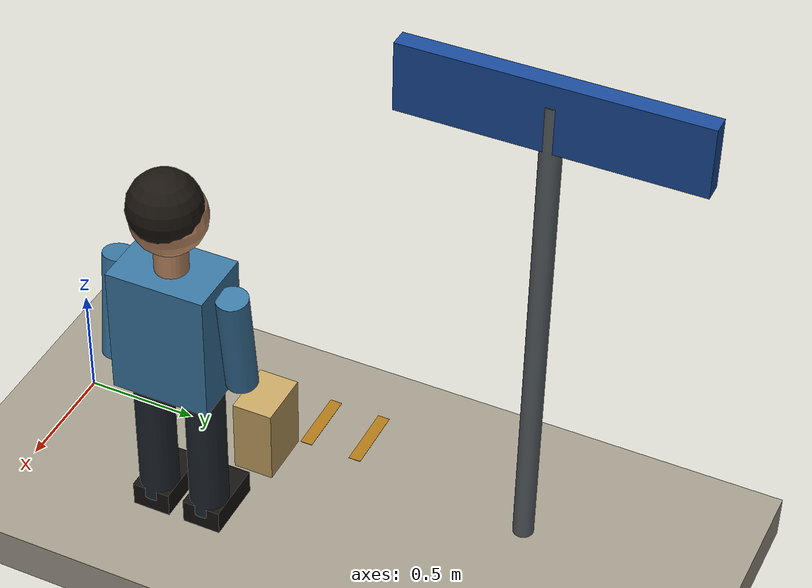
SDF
<sdf version="1.10">
 <world name="swan_town">
  <model name="ground_plane">
   <pose>-14 30 -0.025 0 0 0</pose>
   <static>true</static>
   <link name="link">
    <collision name="collision">
     <geometry><plane><normal>0 0 1</normal><size>100 100</size></plane></geometry>
    </collision>
    <visual name="visual">
     <geometry><plane><normal>0 0 1</normal><size>100 100</size></plane></geometry>
     <material><ambient>0.3 0.5 0.2 1</ambient><diffuse>0.3 0.5 0.2 1</diffuse></material>
    </visual>
   </link>
  </model>
  <model name="ground">
   <static>true</static>
   <pose>15 0 -0.1 0 0 0</pose>
   <link name="body">
    <collision name="box_collision"><geometry><box><size>46 24 0.2</size></box></geometry></collision>
    <visual name="box_visual">
     <geometry><box><size>46 24 0.2</size></box></geometry>
     <material><ambient>0.64 0.61 0.55 1</ambient><diffuse>0.64 0.61 0.55 1</diffuse></material>
    </visual>
   </link>
  </model>
  <model name="tactile_mark_1_9">
   <static>true</static>
   <pose>-0.2 0.815 0.022 0 0 0</pose>
   <link name="body">
    <visual name="box_visual">
     <geometry><box><size>0.3 0.055 0.002</size></box></geometry>
     <material><ambient>0.69 0.47 0.1 1</ambient><diffuse>0.69 0.47 0.1 1</diffuse></material>
    </visual>
   </link>
  </model>
  <model name="tactile_mark_1_10">
   <static>true</static>
   <pose>-0.2 1.05 0.022 0 0 0</pose>
   <link name="body">
    <visual name="box_visual">
     <geometry><box><size>0.3 0.055 0.002</size></box></geometry>
     <material><ambient>0.69 0.47 0.1 1</ambient><diffuse>0.69 0.47 0.1 1</diffuse></material>
    </visual>
   </link>
  </model>
  <model name="tactile_mark_1_11">
   <static>true</static>
   <pose>-0.2 1.285 0.022 0 0 0</pose>
   <link name="body">
    <visual name="box_visual">
     <geometry><box><size>0.3 0.055 0.002</size></box></geometry>
     <material><ambient>0.69 0.47 0.1 1</ambient><diffuse>0.69 0.47 0.1 1</diffuse></material>
    </visual>
   </link>
  </model>
  <model name="crosswalk_sign_pole">
   <static>true</static>
   <pose>0 2.1 0 0 0 0</pose>
   <link name="body">
    <collision name="post_collision">
     <pose>0 0 1.1 0 0 0</pose>
     <geometry><cylinder><radius>0.045</radius><length>2.2</length></cylinder></geometry>
    </collision>
    <visual name="post_visual">
     <pose>0 0 1.1 0 0 0</pose>
     <geometry><cylinder><radius>0.045</radius><length>2.2</length></cylinder></geometry>
     <material><ambient>0.35 0.38 0.4 1</ambient><diffuse>0.35 0.38 0.4 1</diffuse></material>
    </visual>
   </link>
  </model>
  <model name="crosswalk_sign_back">
   <static>true</static>
   <pose>0 2.1 2.15 0 0 0</pose>
   <link name="body">
    <collision name="box_collision"><geometry><box><size>0.08 1.25 0.3</size></box></geometry></collision>
    <visual name="box_visual">
     <geometry><box><size>0.08 1.25 0.3</size></box></geometry>
     <material><ambient>0.1 0.29 0.6 1</ambient><diffuse>0.1 0.29 0.6 1</diffuse></material>
    </visual>
   </link>
  </model>
  <model name="sign_crosswalk">
   <static>true</static>
   <pose>-0.048 2.1 2.15 0 0 -1.5708</pose>
   <link name="body">
    <visual name="top_visual">
     <pose>0 -0.003 0.10687 0 0 0</pose>
     <geometry><box><size>1.1712 0.003 0.0036</size></box></geometry>
     <material><ambient>1 0.961 0.875 1</ambient><diffuse>1 0.961 0.875 1</diffuse></material>
    </visual>
    <visual name="bottom_visual">
     <pose>0 -0.003 -0.10687 0 0 0</pose>
     <geometry><box><size>1.1712 0.003 0.0036</size></box></geometry>
     <material><ambient>1 0.961 0.875 1</ambient><diffuse>1 0.961 0.875 1</diffuse></material>
    </visual>
    <visual name="left_visual">
     <pose>-0.5856 -0.003 0 0 0 0</pose>
     <geometry><box><size>0.0036 0.003 0.21375</size></box></geometry>
     <material><ambient>1 0.961 0.875 1</ambient><diffuse>1 0.961 0.875 1</diffuse></material>
    </visual>
    <visual name="right_visual">
     <pose>0.5856 -0.003 0 0 0 0</pose>
     <geometry><box><size>0.0036 0.003 0.21375</size></box></geometry>
     <material><ambient>1 0.961 0.875 1</ambient><diffuse>1 0.961 0.875 1</diffuse></material>
    </visual>
    <visual name="ink_0_visual">
     <pose>-0.14375 -0.003 0.053125 0 0 0</pose>
     <geometry><box><size>0.025 0.003 0.00625</size></box></geometry>
     <material><ambient>1 0.961 0.875 1</ambient><diffuse>1 0.961 0.875 1</diffuse></material>
    </visual>
    <visual name="ink_1_visual">
     <pose>-0.14687 -0.003 0.046875 0 0 0</pose>
     <geometry><box><size>0.01875 0.003 0.00625</size></box></geometry>
     <material><ambient>1 0.961 0.875 1</ambient><diffuse>1 0.961 0.875 1</diffuse></material>
    </visual>
    <visual name="ink_2_visual">
     <pose>0.13125 -0.003 0.046875 0 0 0</pose>
     <geometry><box><size>0.0625 0.003 0.00625</size></box></geometry>
     <material><ambient>1 0.961 0.875 1</ambient><diffuse>1 0.961 0.875 1</diffuse></material>
    </visual>
    <visual name="ink_3_visual">
     <pose>-0.14375 -0.003 0.040625 0 0 0</pose>
     <geometry><box><size>0.05 0.003 0.00625</size></box></geometry>
     <material><ambient>1 0.961 0.875 1</ambient><diffuse>1 0.961 0.875 1</diffuse></material>
    </visual>
    <visual name="ink_4_visual">
     <pose>-0.0625 -0.003 0.04375 0 0 0</pose>
     <geometry><box><size>0.0375 0.003 0.0125</size></box></geometry>
     <material><ambient>1 0.961 0.875 1</ambient><diffuse>1 0.961 0.875 1</diffuse></material>
    </visual>
    <visual name="ink_5_visual">
     <pose>0.071875 -0.003 0.04375 0 0 0</pose>
     <geometry><box><size>0.00625 0.003 0.0125</size></box></geometry>
     <material><ambient>1 0.961 0.875 1</ambient><diffuse>1 0.961 0.875 1</diffuse></material>
    </visual>
    <visual name="ink_6_visual">
     <pose>0.12187 -0.003 0.040625 0 0 0</pose>
     <geometry><box><size>0.00625 0.003 0.00625</size></box></geometry>
     <material><ambient>1 0.961 0.875 1</ambient><diffuse>1 0.961 0.875 1</diffuse></material>
    </visual>
    <visual name="ink_7_visual">
     <pose>-0.14375 -0.003 0.034375 0 0 0</pose>
     <geometry><box><size>0.025 0.003 0.00625</size></box></geometry>
     <material><ambient>1 0.961 0.875 1</ambient><diffuse>1 0.961 0.875 1</diffuse></material>
    </visual>
    <visual name="ink_8_visual">
     <pose>-0.01875 -0.003 0.04375 0 0 0</pose>
     <geometry><box><size>0.0125 0.003 0.025</size></box></geometry>
     <material><ambient>1 0.961 0.875 1</ambient><diffuse>1 0.961 0.875 1</diffuse></material>
    </visual>
    <visual name="ink_9_visual">
     <pose>0.01875 -0.003 0.040625 0 0 0</pose>
     <geometry><box><size>0.0125 0.003 0.01875</size></box></geometry>
     <material><ambient>1 0.961 0.875 1</ambient><diffuse>1 0.961 0.875 1</diffuse></material>
    </visual>
    <visual name="ink_10_visual">
     <pose>0.034375 -0.003 0.034375 0 0 0</pose>
     <geometry><box><size>0.00625 0.003 0.00625</size></box></geometry>
     <material><ambient>1 0.961 0.875 1</ambient><diffuse>1 0.961 0.875 1</diffuse></material>
    </visual>
    <visual name="ink_11_visual">
     <pose>0.06875 -0.003 0.034375 0 0 0</pose>
     <geometry><box><size>0.0125 0.003 0.00625</size></box></geometry>
     <material><ambient>1 0.961 0.875 1</ambient><diffuse>1 0.961 0.875 1</diffuse></material>
    </visual>
    <visual name="ink_12_visual">
     <pose>-0.14375 -0.003 0.028125 0 0 0</pose>
     <geometry><box><size>0.0375 0.003 0.00625</size></box></geometry>
     <material><ambient>1 0.961 0.875 1</ambient><diffuse>1 0.961 0.875 1</diffuse></material>
    </visual>
    <visual name="ink_13_visual">
     <pose>-0.0125 -0.003 0.028125 0 0 0</pose>
     <geometry><box><size>0.025 0.003 0.00625</size></box></geometry>
     <material><ambient>1 0.961 0.875 1</ambient><diffuse>1 0.961 0.875 1</diffuse></material>
    </visual>
    <visual name="ink_14_visual">
     <pose>0.04375 -0.003 0.028125 0 0 0</pose>
     <geometry><box><size>0.0625 0.003 0.00625</size></box></geometry>
     <material><ambient>1 0.961 0.875 1</ambient><diffuse>1 0.961 0.875 1</diffuse></material>
    </visual>
    <visual name="ink_15_visual">
     <pose>-0.1625 -0.003 0.021875 0 0 0</pose>
     <geometry><box><size>0.0125 0.003 0.00625</size></box></geometry>
     <material><ambient>1 0.961 0.875 1</ambient><diffuse>1 0.961 0.875 1</diffuse></material>
    </visual>
    <visual name="ink_16_visual">
     <pose>-0.12812 -0.003 0.021875 0 0 0</pose>
     <geometry><box><size>0.00625 0.003 0.00625</size></box></geometry>
     <material><ambient>1 0.961 0.875 1</ambient><diffuse>1 0.961 0.875 1</diffuse></material>
    </visual>
    <visual name="ink_17_visual">
     <pose>-0.14375 -0.003 0.015625 0 0 0</pose>
     <geometry><box><size>0.0375 0.003 0.00625</size></box></geometry>
     <material><ambient>1 0.961 0.875 1</ambient><diffuse>1 0.961 0.875 1</diffuse></material>
    </visual>
    <visual name="ink_18_visual">
     <pose>-0.078125 -0.003 0.025 0 0 0</pose>
     <geometry><box><size>0.00625 0.003 0.025</size></box></geometry>
     <material><ambient>1 0.961 0.875 1</ambient><diffuse>1 0.961 0.875 1</diffuse></material>
    </visual>
    <visual name="ink_19_visual">
     <pose>0.01875 -0.003 0.01875 0 0 0</pose>
     <geometry><box><size>0.0125 0.003 0.0125</size></box></geometry>
     <material><ambient>1 0.961 0.875 1</ambient><diffuse>1 0.961 0.875 1</diffuse></material>
    </visual>
    <visual name="ink_20_visual">
     <pose>0.071875 -0.003 0.01875 0 0 0</pose>
     <geometry><box><size>0.00625 0.003 0.0125</size></box></geometry>
     <material><ambient>1 0.961 0.875 1</ambient><diffuse>1 0.961 0.875 1</diffuse></material>
    </visual>
    <visual name="ink_21_visual">
     <pose>0.10625 -0.003 0.028125 0 0 0</pose>
     <geometry><box><size>0.0125 0.003 0.03125</size></box></geometry>
     <material><ambient>1 0.961 0.875 1</ambient><diffuse>1 0.961 0.875 1</diffuse></material>
    </visual>
    <visual name="ink_22_visual">
     <pose>-0.14375 -0.003 0.009375 0 0 0</pose>
     <geometry><box><size>0.0125 0.003 0.00625</size></box></geometry>
     <material><ambient>1 0.961 0.875 1</ambient><diffuse>1 0.961 0.875 1</diffuse></material>
    </visual>
    <visual name="ink_23_visual">
     <pose>-0.05625 -0.003 0.009375 0 0 0</pose>
     <geometry><box><size>0.05 0.003 0.00625</size></box></geometry>
     <material><ambient>1 0.961 0.875 1</ambient><diffuse>1 0.961 0.875 1</diffuse></material>
    </visual>
    <visual name="ink_24_visual">
     <pose>0.13437 -0.003 0.009375 0 0 0</pose>
     <geometry><box><size>0.06875 0.003 0.00625</size></box></geometry>
     <material><ambient>1 0.961 0.875 1</ambient><diffuse>1 0.961 0.875 1</diffuse></material>
    </visual>
    <visual name="ink_25_visual">
     <pose>-0.14375 -0.003 0.003125 0 0 0</pose>
     <geometry><box><size>0.0625 0.003 0.00625</size></box></geometry>
     <material><ambient>1 0.961 0.875 1</ambient><diffuse>1 0.961 0.875 1</diffuse></material>
    </visual>
    <visual name="ink_26_visual">
     <pose>0.04375 -0.003 0.00625 0 0 0</pose>
     <geometry><box><size>0.0625 0.003 0.0125</size></box></geometry>
     <material><ambient>1 0.961 0.875 1</ambient><diffuse>1 0.961 0.875 1</diffuse></material>
    </visual>
    <visual name="ink_27_visual">
     <pose>0.13125 -0.003 0.003125 0 0 0</pose>
     <geometry><box><size>0.0125 0.003 0.00625</size></box></geometry>
     <material><ambient>1 0.961 0.875 1</ambient><diffuse>1 0.961 0.875 1</diffuse></material>
    </visual>
    <visual name="ink_28_visual">
     <pose>-0.1625 -0.003 -0.003125 0 0 0</pose>
     <geometry><box><size>0.025 0.003 0.00625</size></box></geometry>
     <material><ambient>1 0.961 0.875 1</ambient><diffuse>1 0.961 0.875 1</diffuse></material>
    </visual>
    <visual name="ink_29_visual">
     <pose>-0.13438 -0.003 -0.003125 0 0 0</pose>
     <geometry><box><size>0.01875 0.003 0.00625</size></box></geometry>
     <material><ambient>1 0.961 0.875 1</ambient><diffuse>1 0.961 0.875 1</diffuse></material>
    </visual>
    <visual name="ink_30_visual">
     <pose>-0.10312 -0.003 0.025 0 0 0</pose>
     <geometry><box><size>0.00625 0.003 0.0625</size></box></geometry>
     <material><ambient>1 0.961 0.875 1</ambient><diffuse>1 0.961 0.875 1</diffuse></material>
    </visual>
    <visual name="ink_31_visual">
     <pose>-0.01875 -0.003 0.009375 0 0 0</pose>
     <geometry><box><size>0.0125 0.003 0.03125</size></box></geometry>
     <material><ambient>1 0.961 0.875 1</ambient><diffuse>1 0.961 0.875 1</diffuse></material>
    </visual>
    <visual name="ink_32_visual">
     <pose>-0.12812 -0.003 -0.009375 0 0 0</pose>
     <geometry><box><size>0.04375 0.003 0.00625</size></box></geometry>
     <material><ambient>1 0.961 0.875 1</ambient><diffuse>1 0.961 0.875 1</diffuse></material>
    </visual>
    <visual name="ink_33_visual">
     <pose>-0.021875 -0.003 -0.009375 0 0 0</pose>
     <geometry><box><size>0.00625 0.003 0.00625</size></box></geometry>
     <material><ambient>1 0.961 0.875 1</ambient><diffuse>1 0.961 0.875 1</diffuse></material>
    </visual>
    <visual name="ink_34_visual">
     <pose>0.04375 -0.003 -0.00625 0 0 0</pose>
     <geometry><box><size>0.0125 0.003 0.0125</size></box></geometry>
     <material><ambient>1 0.961 0.875 1</ambient><diffuse>1 0.961 0.875 1</diffuse></material>
    </visual>
    <visual name="ink_35_visual">
     <pose>0.13437 -0.003 -0.00625 0 0 0</pose>
     <geometry><box><size>0.00625 0.003 0.0125</size></box></geometry>
     <material><ambient>1 0.961 0.875 1</ambient><diffuse>1 0.961 0.875 1</diffuse></material>
    </visual>
    <visual name="ink_36_visual">
     <pose>-0.15313 -0.003 -0.015625 0 0 0</pose>
     <geometry><box><size>0.01875 0.003 0.00625</size></box></geometry>
     <material><ambient>1 0.961 0.875 1</ambient><diffuse>1 0.961 0.875 1</diffuse></material>
    </visual>
    <visual name="ink_37_visual">
     <pose>0.04375 -0.003 -0.015625 0 0 0</pose>
     <geometry><box><size>0.075 0.003 0.00625</size></box></geometry>
     <material><ambient>1 0.961 0.875 1</ambient><diffuse>1 0.961 0.875 1</diffuse></material>
    </visual>
    <visual name="ink_38_visual">
     <pose>-0.15625 -0.003 -0.021875 0 0 0</pose>
     <geometry><box><size>0.0125 0.003 0.00625</size></box></geometry>
     <material><ambient>1 0.961 0.875 1</ambient><diffuse>1 0.961 0.875 1</diffuse></material>
    </visual>
    <visual name="ink_39_visual">
     <pose>-0.10625 -0.003 -0.01875 0 0 0</pose>
     <geometry><box><size>0.0125 0.003 0.0125</size></box></geometry>
     <material><ambient>1 0.961 0.875 1</ambient><diffuse>1 0.961 0.875 1</diffuse></material>
    </visual>
    <visual name="ink_40_visual">
     <pose>-0.06875 -0.003 -0.015625 0 0 0</pose>
     <geometry><box><size>0.0125 0.003 0.01875</size></box></geometry>
     <material><ambient>1 0.961 0.875 1</ambient><diffuse>1 0.961 0.875 1</diffuse></material>
    </visual>
    <visual name="ink_41_visual">
     <pose>0.046875 -0.003 -0.021875 0 0 0</pose>
     <geometry><box><size>0.08125 0.003 0.00625</size></box></geometry>
     <material><ambient>1 0.961 0.875 1</ambient><diffuse>1 0.961 0.875 1</diffuse></material>
    </visual>
    <visual name="ink_42_visual">
     <pose>0.13437 -0.003 -0.01875 0 0 0</pose>
     <geometry><box><size>0.08125 0.003 0.0125</size></box></geometry>
     <material><ambient>1 0.961 0.875 1</ambient><diffuse>1 0.961 0.875 1</diffuse></material>
    </visual>
    <visual name="ink_43_visual">
     <pose>-0.13125 -0.003 -0.028125 0 0 0</pose>
     <geometry><box><size>0.05 0.003 0.00625</size></box></geometry>
     <material><ambient>1 0.961 0.875 1</ambient><diffuse>1 0.961 0.875 1</diffuse></material>
    </visual>
    <visual name="ink_44_visual">
     <pose>-0.04375 -0.003 -0.028125 0 0 0</pose>
     <geometry><box><size>0.0625 0.003 0.00625</size></box></geometry>
     <material><ambient>1 0.961 0.875 1</ambient><diffuse>1 0.961 0.875 1</diffuse></material>
    </visual>
    <visual name="ink_45_visual">
     <pose>-0.13125 -0.003 -0.034375 0 0 0</pose>
     <geometry><box><size>0.025 0.003 0.00625</size></box></geometry>
     <material><ambient>1 0.961 0.875 1</ambient><diffuse>1 0.961 0.875 1</diffuse></material>
    </visual>
   </link>
  </model>
  <model name="crossing_pedestrian_2">
   <static>true</static>
   <pose>0.5 0.75 0 0 0 -3.14158530718</pose>
   <link name="body">
    <collision name="leg_-1_collision">
     <pose>0 -0.12 0.4 0 0 0</pose>
     <geometry><cylinder><radius>0.085</radius><length>0.68</length></cylinder></geometry>
    </collision>
    <visual name="leg_-1_visual">
     <pose>0 -0.12 0.4 0 0 0</pose>
     <geometry><cylinder><radius>0.085</radius><length>0.68</length></cylinder></geometry>
     <material><ambient>0.12 0.15 0.18 1</ambient><diffuse>0.12 0.15 0.18 1</diffuse></material>
    </visual>
    <collision name="shoe_-1_collision">
     <pose>0.06 -0.12 0.055 0 0 0</pose>
     <geometry><box><size>0.28 0.17 0.11</size></box></geometry>
    </collision>
    <visual name="shoe_-1_visual">
     <pose>0.06 -0.12 0.055 0 0 0</pose>
     <geometry><box><size>0.28 0.17 0.11</size></box></geometry>
     <material><ambient>0.08 0.07 0.06 1</ambient><diffuse>0.08 0.07 0.06 1</diffuse></material>
    </visual>
    <collision name="arm_-1_collision">
     <pose>0.02 -0.27 1.02 0 -0.12 0</pose>
     <geometry><cylinder><radius>0.068</radius><length>0.48</length></cylinder></geometry>
    </collision>
    <visual name="arm_-1_visual">
     <pose>0.02 -0.27 1.02 0 -0.12 0</pose>
     <geometry><cylinder><radius>0.068</radius><length>0.48</length></cylinder></geometry>
     <material><ambient>0.23 0.47 0.64 1</ambient><diffuse>0.23 0.47 0.64 1</diffuse></material>
    </visual>
    <collision name="leg_1_collision">
     <pose>0 0.12 0.4 0 0 0</pose>
     <geometry><cylinder><radius>0.085</radius><length>0.68</length></cylinder></geometry>
    </collision>
    <visual name="leg_1_visual">
     <pose>0 0.12 0.4 0 0 0</pose>
     <geometry><cylinder><radius>0.085</radius><length>0.68</length></cylinder></geometry>
     <material><ambient>0.12 0.15 0.18 1</ambient><diffuse>0.12 0.15 0.18 1</diffuse></material>
    </visual>
    <collision name="shoe_1_collision">
     <pose>0.06 0.12 0.055 0 0 0</pose>
     <geometry><box><size>0.28 0.17 0.11</size></box></geometry>
    </collision>
    <visual name="shoe_1_visual">
     <pose>0.06 0.12 0.055 0 0 0</pose>
     <geometry><box><size>0.28 0.17 0.11</size></box></geometry>
     <material><ambient>0.08 0.07 0.06 1</ambient><diffuse>0.08 0.07 0.06 1</diffuse></material>
    </visual>
    <collision name="arm_1_collision">
     <pose>0.02 0.27 1.02 0 0.12 0</pose>
     <geometry><cylinder><radius>0.068</radius><length>0.48</length></cylinder></geometry>
    </collision>
    <visual name="arm_1_visual">
     <pose>0.02 0.27 1.02 0 0.12 0</pose>
     <geometry><cylinder><radius>0.068</radius><length>0.48</length></cylinder></geometry>
     <material><ambient>0.23 0.47 0.64 1</ambient><diffuse>0.23 0.47 0.64 1</diffuse></material>
    </visual>
    <collision name="torso_collision">
     <pose>0 0 1.02 0 0 0</pose>
     <geometry><box><size>0.3 0.43 0.58</size></box></geometry>
    </collision>
    <visual name="torso_visual">
     <pose>0 0 1.02 0 0 0</pose>
     <geometry><box><size>0.3 0.43 0.58</size></box></geometry>
     <material><ambient>0.23 0.47 0.64 1</ambient><diffuse>0.23 0.47 0.64 1</diffuse></material>
    </visual>
    <visual name="neck_visual">
     <pose>0 0 1.37 0 0 0</pose>
     <geometry><cylinder><radius>0.07</radius><length>0.13</length></cylinder></geometry>
     <material><ambient>0.77 0.56 0.4 1</ambient><diffuse>0.77 0.56 0.4 1</diffuse></material>
    </visual>
    <collision name="head_collision">
     <pose>0 0 1.57 0 0 0</pose>
     <geometry><sphere><radius>0.16</radius></sphere></geometry>
    </collision>
    <visual name="head_visual">
     <pose>0 0 1.57 0 0 0</pose>
     <geometry><sphere><radius>0.16</radius></sphere></geometry>
     <material><ambient>0.77 0.56 0.4 1</ambient><diffuse>0.77 0.56 0.4 1</diffuse></material>
    </visual>
    <visual name="hair_visual">
     <pose>-0.025 0 1.63 0 0 0</pose>
     <geometry><sphere><radius>0.155</radius></sphere></geometry>
     <material><ambient>0.1 0.08 0.06 1</ambient><diffuse>0.1 0.08 0.06 1</diffuse></material>
    </visual>
    <collision name="shopping_bag_collision">
     <pose>0.04 -0.38 0.6 0 0 0</pose>
     <geometry><box><size>0.24 0.17 0.33</size></box></geometry>
    </collision>
    <visual name="shopping_bag_visual">
     <pose>0.04 -0.38 0.6 0 0 0</pose>
     <geometry><box><size>0.24 0.17 0.33</size></box></geometry>
     <material><ambient>0.78 0.65 0.39 1</ambient><diffuse>0.78 0.65 0.39 1</diffuse></material>
    </visual>
   </link>
  </model>
 </world>
</sdf>
